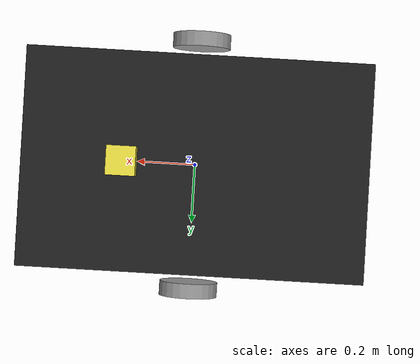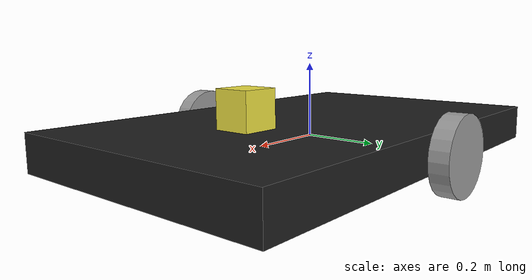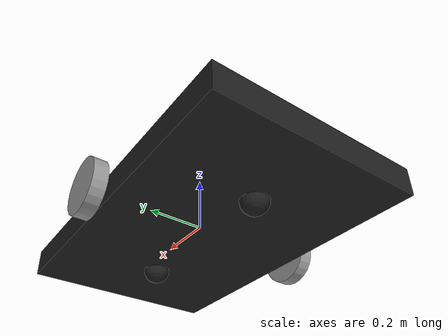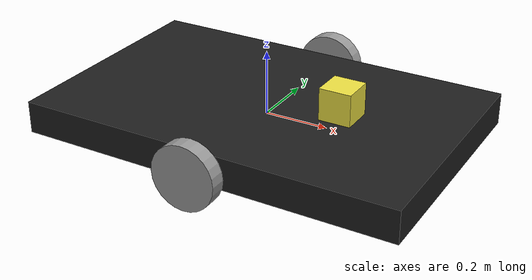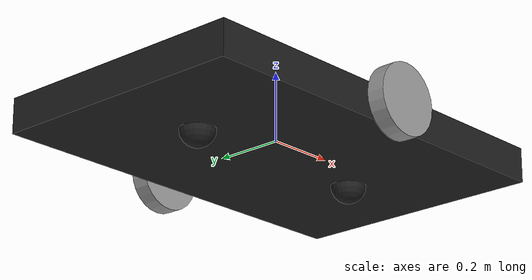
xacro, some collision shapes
<?xml version='1.0'?>

<robot name="vehicle" xmlns:xacro="http://www.ros.org/wiki/xacro">

  <xacro:include filename="$(find description)/urdf/vehicle.gazebo" />
  <xacro:include filename="$(find description)/urdf/materials.xacro" />
  <xacro:include filename="$(find description)/urdf/macros.xacro" />

  <link name='base_link'>
    <pose>0 0 0.1 0 0 0</pose>

    <inertial>
      <mass value="15.0"/>
      <origin xyz="0.0 0 0.1" rpy=" 0 0 0"/>
      <inertia
        ixx="0.1" ixy = "0" ixz = "0"
        iyy="0.1" iyz = "0"
        izz="0.1"
      />
    </inertial>

    <collision name='collision'>
      <geometry>
        <box size="1.2 .76 .1"/>
      </geometry>
    </collision>

    <visual name='base_link_visual'>
      <origin xyz="0 0 0" rpy=" 0 0 0"/>
      <geometry>
        <box size="1.2 .76 .1"/>
      </geometry>
    </visual>

    <collision name='caster_collision'>
      <origin xyz="-0.3 0 -0.05" rpy=" 0 0 0"/>
      <geometry>
        <sphere radius="0.05"/>
      </geometry>
      <surface>
        <friction>
          <ode>
            <mu>0</mu>
            <mu2>0</mu2>
            <slip1>1.0</slip1>
            <slip2>1.0</slip2>
          </ode>
        </friction>
      </surface>
    </collision>

    <visual name='caster_visual'>
      <origin xyz="-0.3 0 -0.05" rpy=" 0 0 0"/>
      <geometry>
        <sphere radius="0.05"/>
      </geometry>
    </visual>

    <collision name='caster_front_collision'>
      <origin xyz="0.3 0 -0.05" rpy=" 0 0 0"/>
      <geometry>
        <sphere radius="0.05"/>
      </geometry>
      <surface>
        <friction>
          <ode>
            <mu>0</mu>
            <mu2>0</mu2>
            <slip1>1.0</slip1>
            <slip2>1.0</slip2>
          </ode>
        </friction>
      </surface>
    </collision>

    <visual name='caster_front_visual'>
      <origin xyz="0.3 0 -0.05" rpy=" 0 0 0"/>
      <geometry>
        <sphere radius="0.05"/>
      </geometry>
    </visual>

  </link>

  <link name="left_wheel">
    <!--origin xyz="0.1 0.13 0.1" rpy="0 1.5707 1.5707"/-->
    <collision name="collision">
      <origin xyz="0 0 0" rpy="0 1.5707 1.5707"/>
      <geometry>
        <cylinder radius="0.1" length="0.05"/>
      </geometry>
    </collision>
    <visual name="left_wheel_visual">
      <origin xyz="0 0 0" rpy="0 1.5707 1.5707"/>
      <geometry>
        <cylinder radius="0.1" length="0.05"/>
      </geometry>
    </visual>
    <inertial>
      <origin xyz="0 0 0" rpy="0 1.5707 1.5707"/>
      <mass value="5"/>
      <inertia
        ixx="0.1" ixy = "0" ixz = "0"
        iyy="0.1" iyz = "0"
        izz="0.1"
      />
    </inertial>
  </link>

  <link name="right_wheel">
    <!--origin xyz="0.1 -0.13 0.1" rpy="0 1.5707 1.5707"/-->
    <collision name="collision">
      <origin xyz="0 0 0" rpy="0 1.5707 1.5707"/>
      <geometry>
        <cylinder radius="0.1" length="0.05"/>
      </geometry>
    </collision>
    <visual name="right_wheel_visual">
      <origin xyz="0 0 0" rpy="0 1.5707 1.5707"/>
      <geometry>
        <cylinder radius="0.1" length="0.05"/>
      </geometry>
    </visual>
    <inertial>
      <origin xyz="0 0 0" rpy="0 1.5707 1.5707"/>
      <mass value="5"/>
      <inertia
        ixx="0.1" ixy = "0" ixz = "0"
        iyy="0.1" iyz = "0"
        izz="0.1"
      />
    </inertial>
  </link>

  <joint type="continuous" name="left_wheel_hinge">
    <origin xyz="0 0.43 0" rpy="0 0 0"/>
    <!--origin xyz="0.1 0.13 0" rpy="0 1.5707 1.5707"/-->
    <child link="left_wheel"/>
    <parent link="base_link"/>
    <axis xyz="0 1 0" rpy="0 0 0"/>
    <limit effort="10000" velocity="1000"/>
    <joint_properties damping="1.0" friction="1.0"/>
  </joint>

  <joint type="continuous" name="right_wheel_hinge">
    <origin xyz="0 -0.43 0" rpy="0 0 0"/>
    <!--origin xyz="0.1 -0.13 0" rpy="0 1.5707 1.5707"/-->
    <child link="right_wheel"/>
    <parent link="base_link"/>
    <axis xyz="0 1 0" rpy="0 0 0"/>
    <limit effort="10000" velocity="1000"/>
    <joint_properties damping="1.0" friction="1.0"/>
  </joint>

  <joint name="hokuyo_joint" type="fixed">
    <axis xyz="0 1 0" />
    <origin xyz=".25 0 .1" rpy="0 0 0"/>
    <parent link="base_link"/>
    <child link="hokuyo"/>
  </joint>

  <!-- Hokuyo Laser -->
  <link name="hokuyo">
    <collision>
      <origin xyz="0 0 0" rpy="0 0 0"/>
      <geometry>
    <box size="0.1 0.1 0.1"/>
      </geometry>
    </collision>

    <visual>
      <origin xyz="0 0 0" rpy="0 0 0"/>
      <geometry>
        <mesh filename="package://description/meshes/hokuyo.dae"/>
      </geometry>
    </visual>

    <inertial>
      <mass value="1e-5" />
      <origin xyz="0 0 0" rpy="0 0 0"/>
      <inertia ixx="1e-6" ixy="0" ixz="0" iyy="1e-6" iyz="0" izz="1e-6" />
    </inertial>
  </link>

</robot>
